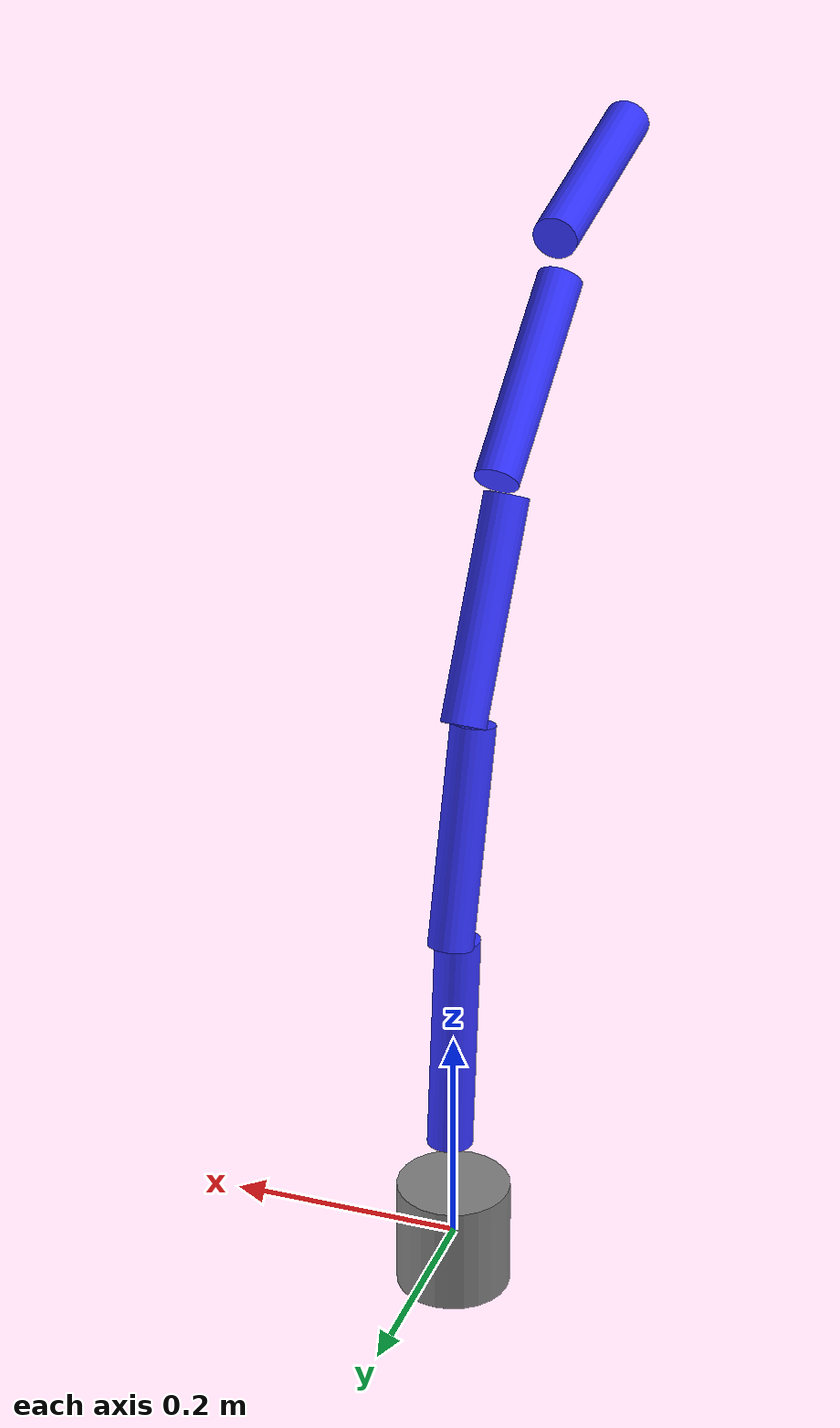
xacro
<?xml version="1.0"?>
<robot xmlns:xacro="http://ros.org/wiki/xacro" name="brazo_5links">
  <link name="base_link">
    <visual>
      <geometry><cylinder length="0.1" radius="0.05"/></geometry>
      <material><color rgba="0.5 0.5 0.5 1.0"/></material>
    </visual>
  </link>

  <xacro:property name="L" value="0.2"/>
  <xacro:property name="R" value="0.02"/>

  <xacro:macro name="add_link" params="i parent ang">
    <link name="link_${i}">
      <visual>
        <geometry><cylinder length="${L}" radius="${R}"/></geometry>
        <material><color rgba="0.2 0.2 1 1"/></material>
      </visual>
    </link>
    <joint name="joint_${i}" type="fixed">
      <parent link="${parent}"/>
      <child link="link_${i}"/>
      <origin xyz="0 0 ${L}" rpy="${ang} 0 0"/>
    </joint>
  </xacro:macro>

  <!-- 5 links -->
  <xacro:add_link i="1" parent="base_link" ang=".1"/>
  <xacro:add_link i="2" parent="link_1" ang=".2"/>
  <xacro:add_link i="3" parent="link_2" ang=".3"/>
  <xacro:add_link i="4" parent="link_3" ang=".4"/>
  <xacro:add_link i="5" parent="link_4" ang=".5"/>
</robot>
